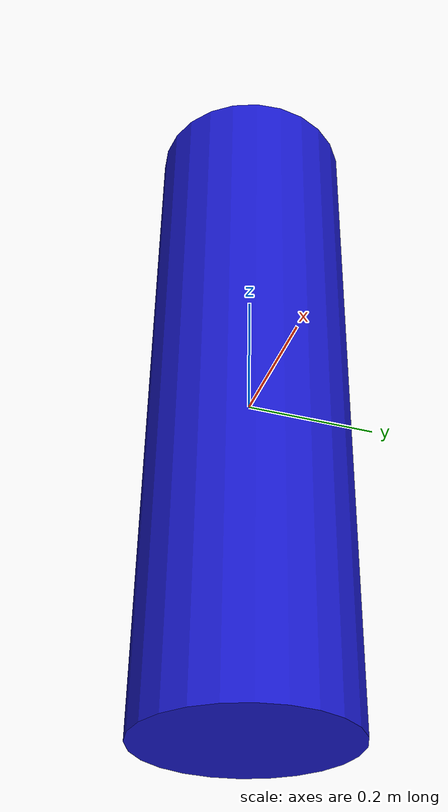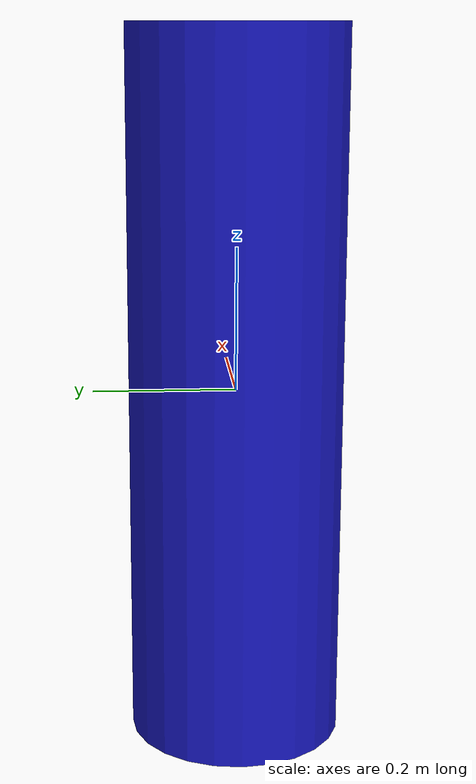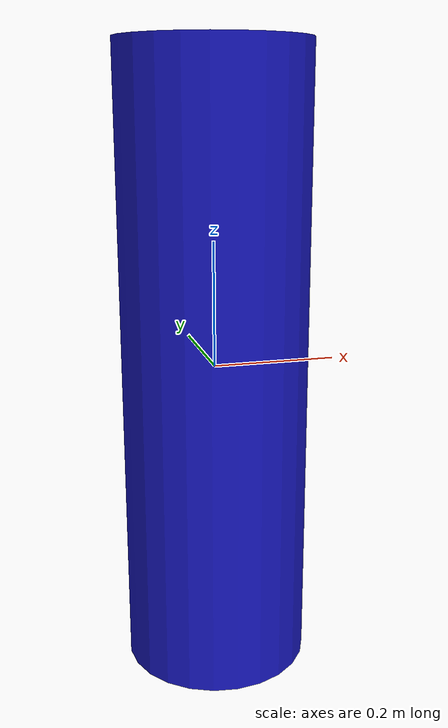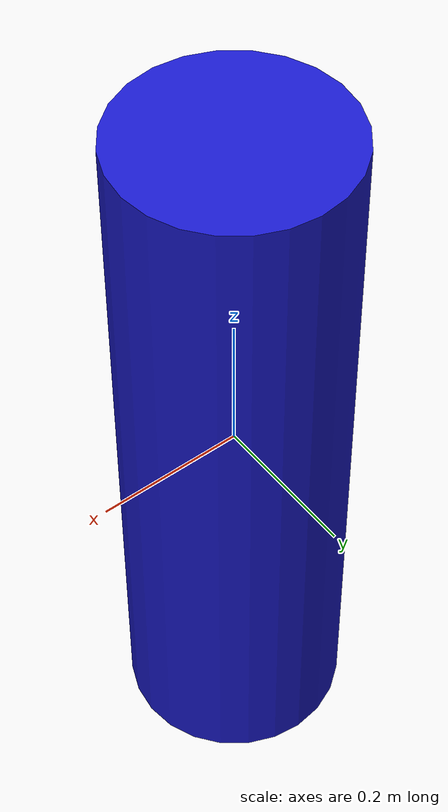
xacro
<?xml version="1.0"?>
<robot xmlns:xacro="http://www.ros.org/wiki/xacro" name="auv">

  <!-- Constants -->
  <xacro:property name="body_mass" value="12.0" />
  <xacro:property name="body_radius" value="0.15" />
  <xacro:property name="body_length" value="1.0" />

  <!-- Base Link (Body) -->
  <link name="base_link">
    <visual>
      <geometry>
        <cylinder radius="${body_radius}" length="${body_length}"/>
      </geometry>
      <material name="blue">
        <color rgba="0.1 0.1 0.8 1.0"/>
      </material>
    </visual>
    <collision>
      <geometry>
        <cylinder radius="${body_radius}" length="${body_length}"/>
      </geometry>
    </collision>
    <inertial>
      <mass value="${body_mass}"/>
      <inertia ixx="1.0" ixy="0" ixz="0" iyy="1.0" iyz="0" izz="1.0"/>
    </inertial>
  </link>

  <!-- Sonar Link -->
  <link name="sonar_link">
    <visual>
      <geometry>
        <box size="0.05 0.05 0.05"/>
      </geometry>
      <material name="white">
        <color rgba="1 1 1 1"/>
      </material>
    </visual>
    <collision>
      <geometry>
        <box size="0.05 0.05 0.05"/>
      </geometry>
    </collision>
    <inertial>
      <mass value="0.1"/>
      <inertia ixx="0.001" ixy="0" ixz="0" iyy="0.001" iyz="0" izz="0.001"/>
    </inertial>
  </link>

  <joint name="sonar_joint" type="fixed">
    <parent link="base_link"/>
    <child link="sonar_link"/>
    <origin xyz="0 0 -${body_radius}" rpy="0 1.5707 0"/>
  </joint>

  <!-- Gazebo Plugins -->
  <gazebo reference="base_link">
    <plugin name="buoyancy" filename="libbuoyancy_gazebo_plugin.so">
        <fluid_density>1025</fluid_density>
        <volume>${3.14159265 * body_radius * body_radius * body_length}</volume>
        <center_of_volume>0 0 0</center_of_volume>
        <buoyancy_force_topic>/buoyancy_force</buoyancy_force_topic>
    </plugin>
    <plugin name="drag" filename="libdrag_gazebo_plugin.so">
        <drag_coefficient>0.8</drag_coefficient>
        <area>${body_radius * 2 * body_length}</area>
        <fluid_density>1025</fluid_density>
    </plugin>
  </gazebo>

  <!-- Gazebo Sonar Sensor (for Gazebo Garden) -->
  <gazebo reference="sonar_link">
    <sensor name="gpu_lidar" type="gpu_lidar">
        <topic>/sonar_scan</topic>
        <update_rate>10</update_rate>
        <ray>
            <scan>
                <horizontal>
                    <samples>1</samples>
                    <resolution>1</resolution>
                    <min_angle>0.0</min_angle>
                    <max_angle>0.0</max_angle>
                </horizontal>
                <vertical>
                    <samples>1</samples>
                    <resolution>1</resolution>
                    <min_angle>0.0</min_angle>
                    <max_angle>0.0</max_angle>
                </vertical>
            </scan>
            <range>
                <min>0.5</min>
                <max>50.0</max>
                <resolution>0.01</resolution>
            </range>
        </ray>
        <visualize>true</visualize>
    </sensor>
  </gazebo>

</robot>
